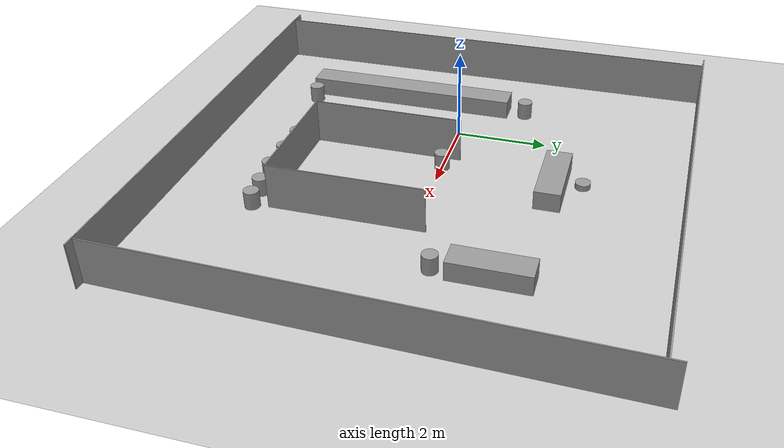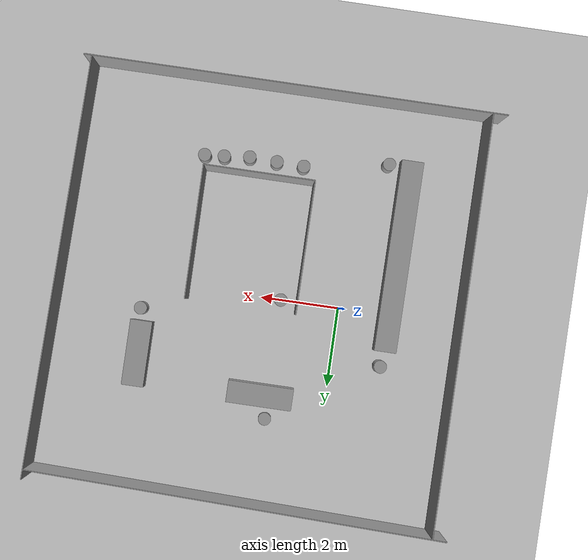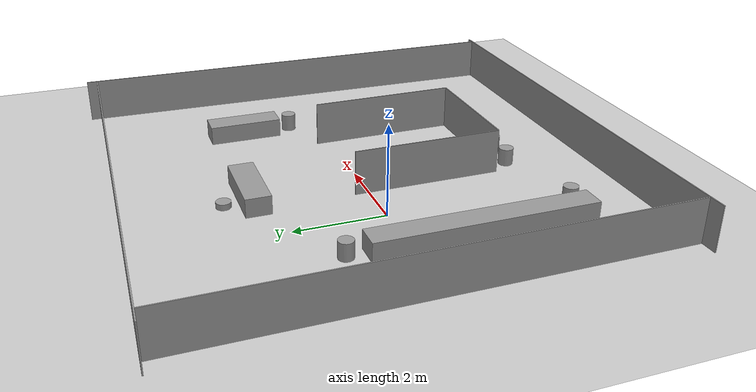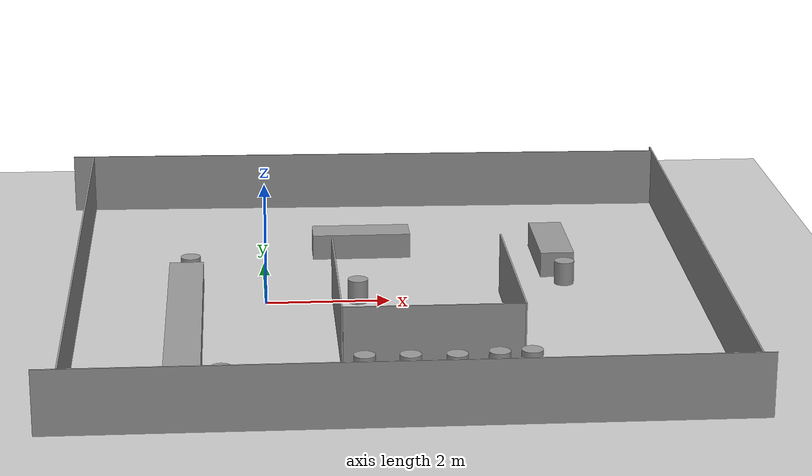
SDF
<sdf version="1.6">
 <world name="default">
  <light name="sun" type="directional">
   <pose>0 0 10 0 -0 0</pose>
   <diffuse>0.8 0.8 0.8 1</diffuse>
   <specular>0.2 0.2 0.2 1</specular>
   <attenuation>
    <range>1000</range>
    <constant>0.9</constant>
    <linear>0.01</linear>
    <quadratic>0.001</quadratic>
   </attenuation>
   <direction>-0.5 0.1 -0.9</direction>
  </light>
  <model name="ground_plane">
   <static>1</static>
   <link name="link">
    <collision name="collision">
     <geometry><plane><normal>0 0 1</normal><size>100 100</size></plane></geometry>
     <surface>
      <contact><collide_bitmask>65535</collide_bitmask></contact>
      <friction><ode><mu>100</mu><mu2>50</mu2></ode></friction>
     </surface>
    </collision>
    <visual name="visual">
     <cast_shadows>0</cast_shadows>
     <geometry><plane><normal>0 0 1</normal><size>100 100</size></plane></geometry>
     <material>
      <script><uri>file://media/materials/scripts/gazebo.material</uri><name>Gazebo/Grey</name></script>
     </material>
    </visual>
   </link>
  </model>
  <gravity>0 0 -9.8</gravity>
  <magnetic_field>6e-06 2.3e-05 -4.2e-05</magnetic_field>
  <atmosphere type="adiabatic"/>
  <physics name="default_physics" default="0" type="ode">
   <max_step_size>0.001</max_step_size>
   <real_time_factor>1</real_time_factor>
   <real_time_update_rate>1000</real_time_update_rate>
  </physics>
  <scene><ambient>0.4 0.4 0.4 1</ambient><background>0.7 0.7 0.7 1</background><shadows>1</shadows></scene>
  <audio><device>default</device></audio>
  <spherical_coordinates>
   <surface_model>EARTH_WGS84</surface_model>
   <latitude_deg>0</latitude_deg>
   <longitude_deg>0</longitude_deg>
   <elevation>0</elevation>
   <heading_deg>0</heading_deg>
  </spherical_coordinates>
  <model name="unit_box">
   <static>1</static>
   <pose>-3.00167 -0.002466 0.499975 -5e-06 -5e-06 0.001355</pose>
   <link name="unit_box::link">
    <inertial>
     <mass>1</mass>
     <inertia>
      <ixx>0.166667</ixx>
      <ixy>0</ixy>
      <ixz>0</ixz>
      <iyy>0.166667</iyy>
      <iyz>0</iyz>
      <izz>0.166667</izz>
     </inertia>
    </inertial>
    <collision name="collision"><geometry><box><size>0.024457 10.5058 1</size></box></geometry></collision>
    <visual name="visual">
     <geometry><box><size>0.024457 10.5058 1</size></box></geometry>
     <material>
      <script><name>Gazebo/Grey</name><uri>file://media/materials/scripts/gazebo.material</uri></script>
     </material>
    </visual>
   </link>
  </model>
  <model name="unit_box_clone">
   <static>1</static>
   <pose>7.04486 -0.000233 0.499991 -4e-06 -1e-06 -0.020872</pose>
   <link name="unit_box::link">
    <inertial>
     <mass>1</mass>
     <inertia>
      <ixx>0.166667</ixx>
      <ixy>0</ixy>
      <ixz>0</ixz>
      <iyy>0.166667</iyy>
      <iyz>0</iyz>
      <izz>0.166667</izz>
     </inertia>
    </inertial>
    <collision name="collision"><geometry><box><size>0.024457 10.5058 1</size></box></geometry></collision>
    <visual name="visual">
     <geometry><box><size>0.024457 10.5058 1</size></box></geometry>
     <material>
      <script><name>Gazebo/Grey</name><uri>file://media/materials/scripts/gazebo.material</uri></script>
     </material>
    </visual>
   </link>
  </model>
  <model name="unit_box_clone_0">
   <static>1</static>
   <pose>1.88654 -5.27635 0.499685 -6e-05 2.3e-05 1.57104</pose>
   <link name="unit_box::link">
    <inertial>
     <mass>1</mass>
     <inertia>
      <ixx>0.166667</ixx>
      <ixy>0</ixy>
      <ixz>0</ixz>
      <iyy>0.166667</iyy>
      <iyz>0</iyz>
      <izz>0.166667</izz>
     </inertia>
    </inertial>
    <collision name="collision"><geometry><box><size>0.024457 10.5058 1</size></box></geometry></collision>
    <visual name="visual">
     <geometry><box><size>0.024457 10.5058 1</size></box></geometry>
     <material>
      <script><name>Gazebo/Grey</name><uri>file://media/materials/scripts/gazebo.material</uri></script>
     </material>
    </visual>
   </link>
  </model>
  <model name="unit_box_clone_0_clone">
   <static>1</static>
   <pose>1.88566 5.13936 0.49997 6e-06 3e-06 1.54554</pose>
   <link name="unit_box::link">
    <inertial>
     <mass>1</mass>
     <inertia>
      <ixx>0.166667</ixx>
      <ixy>0</ixy>
      <ixz>0</ixz>
      <iyy>0.166667</iyy>
      <iyz>0</iyz>
      <izz>0.166667</izz>
     </inertia>
    </inertial>
    <collision name="collision"><geometry><box><size>0.024457 10.5058 1</size></box></geometry></collision>
    <visual name="visual">
     <geometry><box><size>0.024457 10.5058 1</size></box></geometry>
     <material>
      <script><name>Gazebo/Grey</name><uri>file://media/materials/scripts/gazebo.material</uri></script>
     </material>
    </visual>
   </link>
  </model>
  <model name="unit_box_clone_0_clone_0">
   <static>1</static>
   <pose>2.46659 -3.01946 0.499931 -5e-05 -1e-06 1.57004</pose>
   <link name="unit_box::link">
    <inertial>
     <mass>1</mass>
     <inertia>
      <ixx>0.166667</ixx>
      <ixy>0</ixy>
      <ixz>0</ixz>
      <iyy>0.166667</iyy>
      <iyz>0</iyz>
      <izz>0.166667</izz>
     </inertia>
    </inertial>
    <collision name="collision"><geometry><box><size>0.024457 2.74031 1</size></box></geometry></collision>
    <visual name="visual">
     <geometry><box><size>0.024457 2.74031 1</size></box></geometry>
     <material>
      <script><name>Gazebo/Grey</name><uri>file://media/materials/scripts/gazebo.material</uri></script>
     </material>
    </visual>
   </link>
  </model>
  <model name="unit_box_clone_1">
   <static>1</static>
   <pose>1.08569 -1.35682 0.499702 -0.00018 2e-06 -0.001076</pose>
   <link name="unit_box::link">
    <inertial>
     <mass>1</mass>
     <inertia>
      <ixx>0.166667</ixx>
      <ixy>0</ixy>
      <ixz>0</ixz>
      <iyy>0.166667</iyy>
      <iyz>0</iyz>
      <izz>0.166667</izz>
     </inertia>
    </inertial>
    <collision name="collision"><geometry><box><size>0.024457 3.32209 1</size></box></geometry></collision>
    <visual name="visual">
     <geometry><box><size>0.024457 3.32209 1</size></box></geometry>
     <material>
      <script><name>Gazebo/Grey</name><uri>file://media/materials/scripts/gazebo.material</uri></script>
     </material>
    </visual>
   </link>
  </model>
  <model name="unit_box_clone_1_clone">
   <static>1</static>
   <pose>3.84155 -1.36335 0.4997 0.000181 -1e-06 0.004528</pose>
   <link name="unit_box::link">
    <inertial>
     <mass>1</mass>
     <inertia>
      <ixx>0.166667</ixx>
      <ixy>0</ixy>
      <ixz>0</ixz>
      <iyy>0.166667</iyy>
      <iyz>0</iyz>
      <izz>0.166667</izz>
     </inertia>
    </inertial>
    <collision name="collision"><geometry><box><size>0.024457 3.32209 1</size></box></geometry></collision>
    <visual name="visual">
     <geometry><box><size>0.024457 3.32209 1</size></box></geometry>
     <material>
      <script><name>Gazebo/Grey</name><uri>file://media/materials/scripts/gazebo.material</uri></script>
     </material>
    </visual>
   </link>
  </model>
  <model name="unit_box_0">
   <static>1</static>
   <pose>-1.29468 -1.51317 0.20795 0.001009 3e-06 -0.002659</pose>
   <link name="link">
    <inertial>
     <mass>1</mass>
     <inertia>
      <ixx>0.166667</ixx>
      <ixy>0</ixy>
      <ixz>0</ixz>
      <iyy>0.166667</iyy>
      <iyz>0</iyz>
      <izz>0.166667</izz>
     </inertia>
    </inertial>
    <collision name="collision"><geometry><box><size>0.558296 4.84627 0.420789</size></box></geometry></collision>
    <visual name="visual">
     <geometry><box><size>0.558296 4.84627 0.420789</size></box></geometry>
     <material>
      <script><name>Gazebo/Grey</name><uri>file://media/materials/scripts/gazebo.material</uri></script>
     </material>
    </visual>
   </link>
  </model>
  <model name="unit_box_0_clone">
   <static>1</static>
   <pose>4.87739 1.83265 0.210394 -0 -0 -0</pose>
   <link name="link">
    <inertial>
     <mass>1</mass>
     <inertia>
      <ixx>0.166667</ixx>
      <ixy>0</ixy>
      <ixz>0</ixz>
      <iyy>0.166667</iyy>
      <iyz>0</iyz>
      <izz>0.166667</izz>
     </inertia>
    </inertial>
    <collision name="collision"><geometry><box><size>0.558297 1.65721 0.420789</size></box></geometry></collision>
    <visual name="visual">
     <geometry><box><size>0.558297 1.65721 0.420789</size></box></geometry>
     <material>
      <script><name>Gazebo/Grey</name><uri>file://media/materials/scripts/gazebo.material</uri></script>
     </material>
    </visual>
   </link>
  </model>
  <model name="unit_cylinder">
   <static>1</static>
   <pose>1.398 -3.41472 0.193769 0 -0 0</pose>
   <link name="link">
    <inertial>
     <mass>1</mass>
     <inertia><ixx>0.145833</ixx><ixy>0</ixy><ixz>0</ixz><iyy>0.145833</iyy><iyz>0</iyz><izz>0.125</izz></inertia>
    </inertial>
    <collision name="collision">
     <geometry><cylinder><radius>0.163881</radius><length>0.387557</length></cylinder></geometry>
    </collision>
    <visual name="visual">
     <geometry><cylinder><radius>0.163881</radius><length>0.387557</length></cylinder></geometry>
     <material>
      <script><name>Gazebo/Grey</name><uri>file://media/materials/scripts/gazebo.material</uri></script>
     </material>
    </visual>
   </link>
  </model>
  <model name="unit_cylinder_clone">
   <static>1</static>
   <pose>2.08331 -3.4303 0.193769 0 -0 0</pose>
   <link name="link">
    <inertial>
     <mass>1</mass>
     <inertia><ixx>0.145833</ixx><ixy>0</ixy><ixz>0</ixz><iyy>0.145833</iyy><iyz>0</iyz><izz>0.125</izz></inertia>
    </inertial>
    <collision name="collision">
     <geometry><cylinder><radius>0.163881</radius><length>0.387557</length></cylinder></geometry>
    </collision>
    <visual name="visual">
     <geometry><cylinder><radius>0.163881</radius><length>0.387557</length></cylinder></geometry>
     <material>
      <script><name>Gazebo/Grey</name><uri>file://media/materials/scripts/gazebo.material</uri></script>
     </material>
    </visual>
   </link>
  </model>
  <model name="unit_cylinder_clone_0">
   <static>1</static>
   <pose>2.77796 -3.45308 0.193769 0 -0 0</pose>
   <link name="link">
    <inertial>
     <mass>1</mass>
     <inertia><ixx>0.145833</ixx><ixy>0</ixy><ixz>0</ixz><iyy>0.145833</iyy><iyz>0</iyz><izz>0.125</izz></inertia>
    </inertial>
    <collision name="collision">
     <geometry><cylinder><radius>0.163881</radius><length>0.387557</length></cylinder></geometry>
    </collision>
    <visual name="visual">
     <geometry><cylinder><radius>0.163881</radius><length>0.387557</length></cylinder></geometry>
     <material>
      <script><name>Gazebo/Grey</name><uri>file://media/materials/scripts/gazebo.material</uri></script>
     </material>
    </visual>
   </link>
  </model>
  <model name="unit_cylinder_clone_1">
   <static>1</static>
   <pose>3.41749 -3.38306 0.193769 0 -0 0</pose>
   <link name="link">
    <inertial>
     <mass>1</mass>
     <inertia><ixx>0.145833</ixx><ixy>0</ixy><ixz>0</ixz><iyy>0.145833</iyy><iyz>0</iyz><izz>0.125</izz></inertia>
    </inertial>
    <collision name="collision">
     <geometry><cylinder><radius>0.163881</radius><length>0.387557</length></cylinder></geometry>
    </collision>
    <visual name="visual">
     <geometry><cylinder><radius>0.163881</radius><length>0.387557</length></cylinder></geometry>
     <material>
      <script><name>Gazebo/Grey</name><uri>file://media/materials/scripts/gazebo.material</uri></script>
     </material>
    </visual>
   </link>
  </model>
  <model name="unit_cylinder_clone_2">
   <static>1</static>
   <pose>3.90976 -3.34914 0.193769 0 -0 0</pose>
   <link name="link">
    <inertial>
     <mass>1</mass>
     <inertia><ixx>0.145833</ixx><ixy>0</ixy><ixz>0</ixz><iyy>0.145833</iyy><iyz>0</iyz><izz>0.125</izz></inertia>
    </inertial>
    <collision name="collision">
     <geometry><cylinder><radius>0.163881</radius><length>0.387557</length></cylinder></geometry>
    </collision>
    <visual name="visual">
     <geometry><cylinder><radius>0.163881</radius><length>0.387557</length></cylinder></geometry>
     <material>
      <script><name>Gazebo/Grey</name><uri>file://media/materials/scripts/gazebo.material</uri></script>
     </material>
    </visual>
   </link>
  </model>
  <model name="unit_cylinder_clone_3">
   <static>1</static>
   <pose>4.95005 0.694814 0.193769 0 -0 0</pose>
   <link name="link">
    <inertial>
     <mass>1</mass>
     <inertia><ixx>0.145833</ixx><ixy>0</ixy><ixz>0</ixz><iyy>0.145833</iyy><iyz>0</iyz><izz>0.125</izz></inertia>
    </inertial>
    <collision name="collision">
     <geometry><cylinder><radius>0.163881</radius><length>0.387557</length></cylinder></geometry>
    </collision>
    <visual name="visual">
     <geometry><cylinder><radius>0.163881</radius><length>0.387557</length></cylinder></geometry>
     <material>
      <script><name>Gazebo/Grey</name><uri>file://media/materials/scripts/gazebo.material</uri></script>
     </material>
    </visual>
   </link>
  </model>
  <model name="unit_cylinder_clone_4">
   <static>1</static>
   <pose>1.48812 -0.005276 0.193769 0 -0 0</pose>
   <link name="link">
    <inertial>
     <mass>1</mass>
     <inertia><ixx>0.145833</ixx><ixy>0</ixy><ixz>0</ixz><iyy>0.145833</iyy><iyz>0</iyz><izz>0.125</izz></inertia>
    </inertial>
    <collision name="collision">
     <geometry><cylinder><radius>0.163881</radius><length>0.387557</length></cylinder></geometry>
    </collision>
    <visual name="visual">
     <geometry><cylinder><radius>0.163881</radius><length>0.387557</length></cylinder></geometry>
     <material>
      <script><name>Gazebo/Grey</name><uri>file://media/materials/scripts/gazebo.material</uri></script>
     </material>
    </visual>
   </link>
  </model>
  <model name="unit_cylinder_clone_5">
   <static>1</static>
   <pose>-0.726541 -3.77399 0.193769 0 -0 0</pose>
   <link name="link">
    <inertial>
     <mass>1</mass>
     <inertia><ixx>0.145833</ixx><ixy>0</ixy><ixz>0</ixz><iyy>0.145833</iyy><iyz>0</iyz><izz>0.125</izz></inertia>
    </inertial>
    <collision name="collision">
     <geometry><cylinder><radius>0.163881</radius><length>0.387557</length></cylinder></geometry>
    </collision>
    <visual name="visual">
     <geometry><cylinder><radius>0.163881</radius><length>0.387557</length></cylinder></geometry>
     <material>
      <script><name>Gazebo/Grey</name><uri>file://media/materials/scripts/gazebo.material</uri></script>
     </material>
    </visual>
   </link>
  </model>
  <model name="unit_cylinder_clone_6">
   <static>1</static>
   <pose>-1.22667 1.30005 0.193769 0 -0 0</pose>
   <link name="link">
    <inertial>
     <mass>1</mass>
     <inertia><ixx>0.145833</ixx><ixy>0</ixy><ixz>0</ixz><iyy>0.145833</iyy><iyz>0</iyz><izz>0.125</izz></inertia>
    </inertial>
    <collision name="collision">
     <geometry><cylinder><radius>0.163881</radius><length>0.387557</length></cylinder></geometry>
    </collision>
    <visual name="visual">
     <geometry><cylinder><radius>0.163881</radius><length>0.387557</length></cylinder></geometry>
     <material>
      <script><name>Gazebo/Grey</name><uri>file://media/materials/scripts/gazebo.material</uri></script>
     </material>
    </visual>
   </link>
  </model>
  <model name="unit_box_0_clone_clone">
   <static>1</static>
   <pose>1.67233 2.44366 0.210394 0 -0 1.57</pose>
   <link name="link">
    <inertial>
     <mass>1</mass>
     <inertia>
      <ixx>0.166667</ixx>
      <ixy>0</ixy>
      <ixz>0</ixz>
      <iyy>0.166667</iyy>
      <iyz>0</iyz>
      <izz>0.166667</izz>
     </inertia>
    </inertial>
    <collision name="collision"><geometry><box><size>0.558297 1.65721 0.420789</size></box></geometry></collision>
    <visual name="visual">
     <geometry><box><size>0.558297 1.65721 0.420789</size></box></geometry>
     <material>
      <script><name>Gazebo/Grey</name><uri>file://media/materials/scripts/gazebo.material</uri></script>
     </material>
    </visual>
   </link>
  </model>
  <model name="unit_cylinder_clone_4_clone">
   <static>1</static>
   <pose>1.4608 3.04556 0.067766 0 -0 0</pose>
   <link name="link">
    <inertial>
     <mass>1</mass>
     <inertia><ixx>0.145833</ixx><ixy>0</ixy><ixz>0</ixz><iyy>0.145833</iyy><iyz>0</iyz><izz>0.125</izz></inertia>
    </inertial>
    <collision name="collision">
     <geometry><cylinder><radius>0.163881</radius><length>0.135551</length></cylinder></geometry>
    </collision>
    <visual name="visual">
     <geometry><cylinder><radius>0.163881</radius><length>0.135551</length></cylinder></geometry>
     <material>
      <script><name>Gazebo/Grey</name><uri>file://media/materials/scripts/gazebo.material</uri></script>
     </material>
    </visual>
   </link>
  </model>
 </world>
</sdf>
